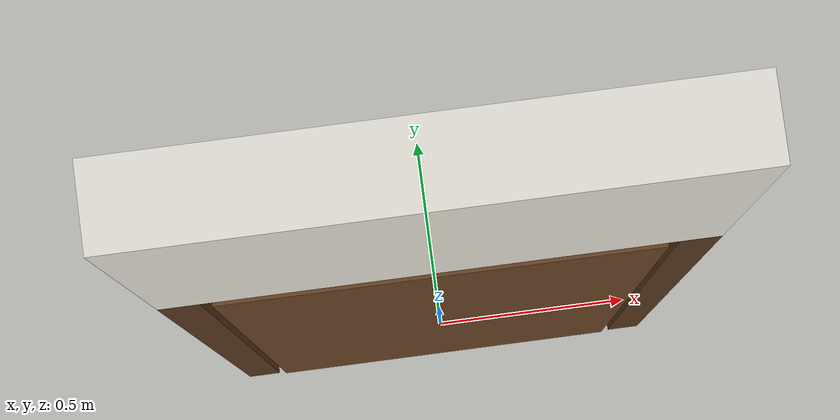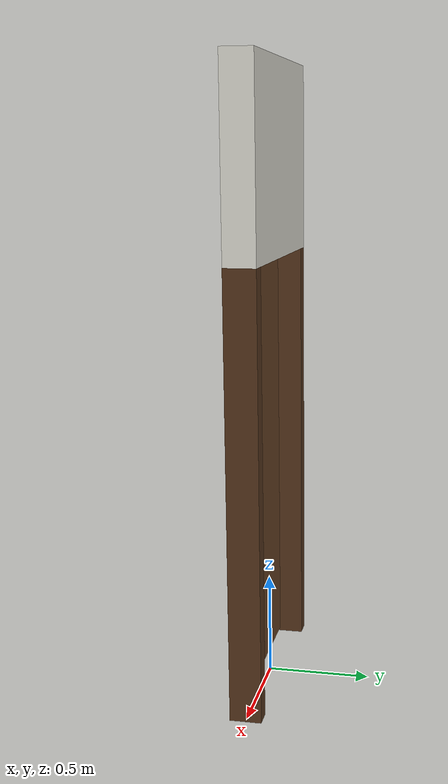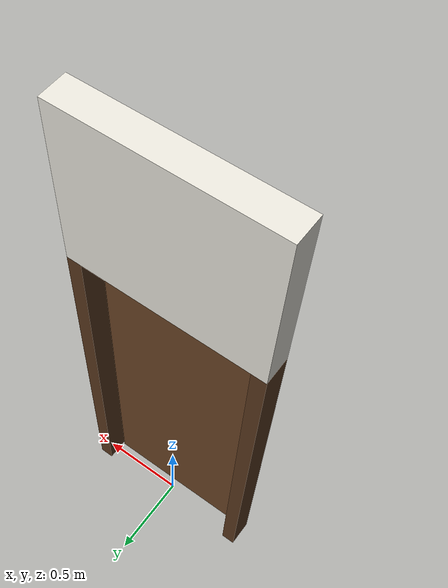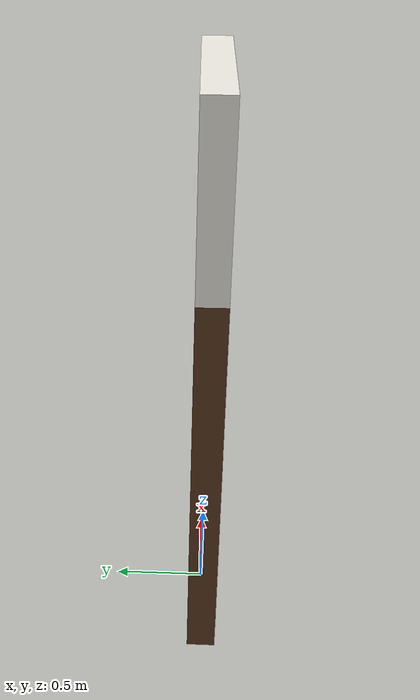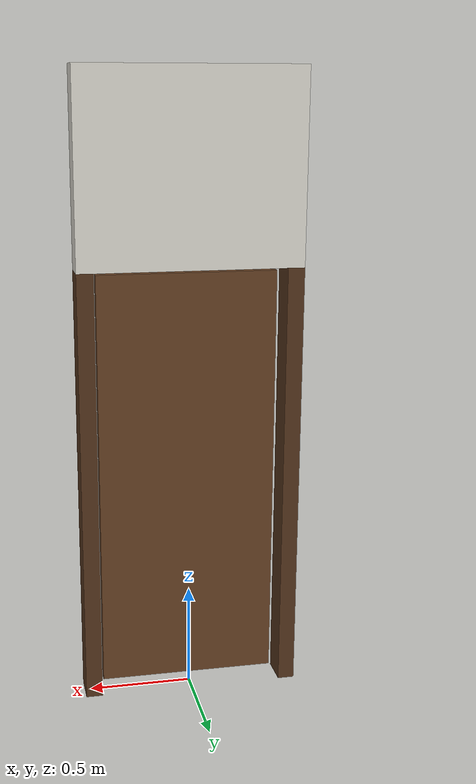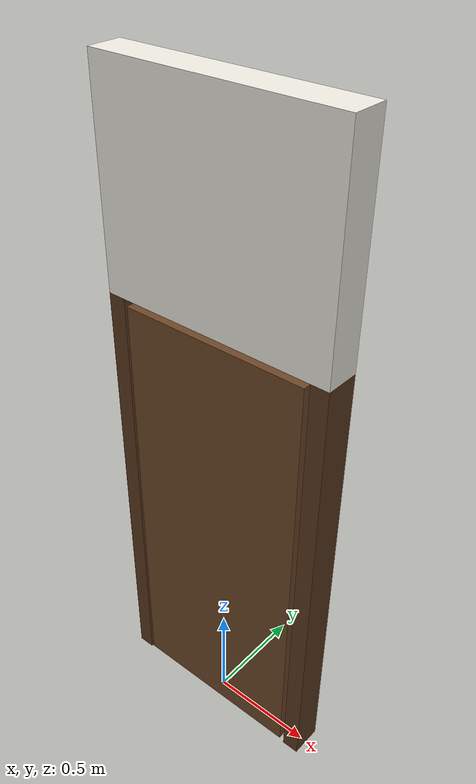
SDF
<?xml version="1.0" ?>
<sdf version="1.6">
  <model name="door_single">
    <static>true</static>

    <!-- ===== FRAME ===== -->
    <link name="frame_link">
      <!-- Left jamb -->
      <collision name="jamb_left_col">
        <pose>-0.49 0 1.05 0 0 0</pose>
        <geometry><box><size>0.08 0.15 2.1</size></box></geometry>
      </collision>
      <visual name="jamb_left_vis">
        <pose>-0.49 0 1.05 0 0 0</pose>
        <geometry><box><size>0.08 0.15 2.1</size></box></geometry>
        <material>
          <ambient>0.28 0.18 0.10 1</ambient>
          <diffuse>0.35 0.22 0.12 1</diffuse>
          <specular>0.10 0.08 0.05 1</specular>
        </material>
      </visual>

      <!-- Right jamb -->
      <collision name="jamb_right_col">
        <pose>0.49 0 1.05 0 0 0</pose>
        <geometry><box><size>0.08 0.15 2.1</size></box></geometry>
      </collision>
      <visual name="jamb_right_vis">
        <pose>0.49 0 1.05 0 0 0</pose>
        <geometry><box><size>0.08 0.15 2.1</size></box></geometry>
        <material>
          <ambient>0.28 0.18 0.10 1</ambient>
          <diffuse>0.35 0.22 0.12 1</diffuse>
          <specular>0.10 0.08 0.05 1</specular>
        </material>
      </visual>

      <!-- Head / lintel (spans 0.9 clear + jambs, from z=2.1 up to 3.0 fill) -->
      <collision name="head_col">
        <pose>0 0 2.55 0 0 0</pose>
        <geometry><box><size>1.06 0.15 0.9</size></box></geometry>
      </collision>
      <visual name="head_vis">
        <pose>0 0 2.55 0 0 0</pose>
        <geometry><box><size>1.06 0.15 0.9</size></box></geometry>
        <material>
          <ambient>0.85 0.84 0.80 1</ambient>
          <diffuse>0.92 0.91 0.87 1</diffuse>
          <specular>0.05 0.05 0.05 1</specular>
        </material>
      </visual>
    </link>

    <!-- ===== LEAF (held open flat, no path obstruction) ===== -->
    <link name="leaf_link">
      <!-- Placed flush inside the reveal, offset in Y so it doesn't block the 0.9 m opening -->
      <pose>0 -0.06 1.05 0 0 0</pose>
      <collision name="leaf_col">
        <!-- Thin leaf; kept out of the walkway plane -->
        <geometry><box><size>0.86 0.04 2.05</size></box></geometry>
      </collision>
      <visual name="leaf_vis">
        <geometry><box><size>0.86 0.04 2.05</size></box></geometry>
        <material>
          <ambient>0.32 0.20 0.11 1</ambient>
          <diffuse>0.42 0.27 0.15 1</diffuse>
          <specular>0.15 0.12 0.08 1</specular>
        </material>
      </visual>
    </link>

  </model>
</sdf>
